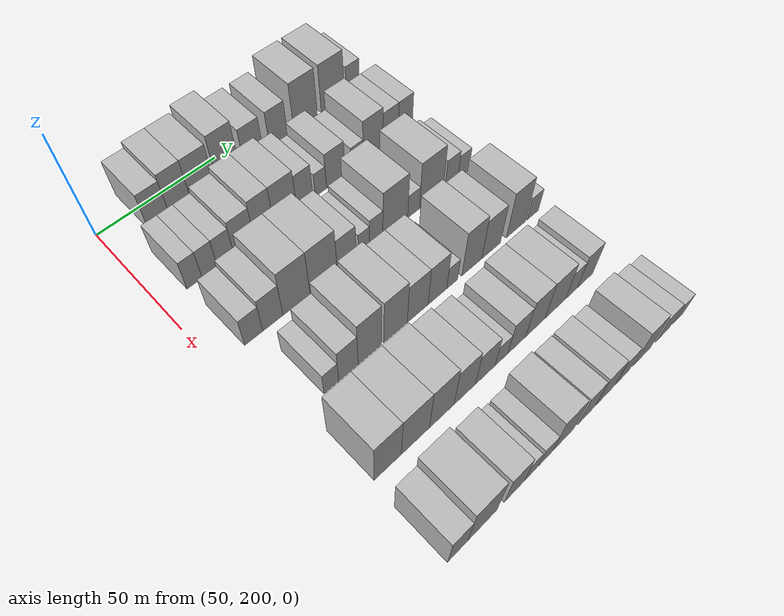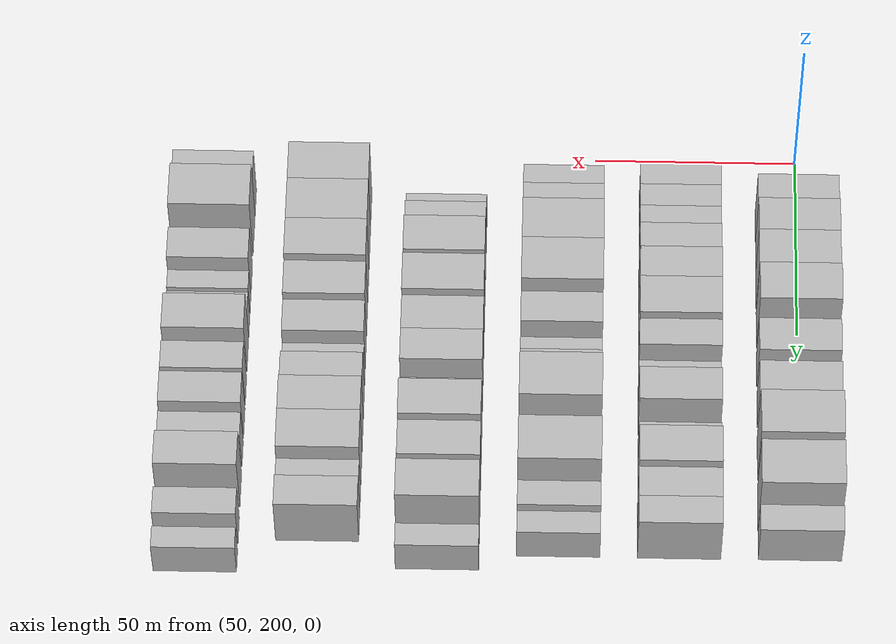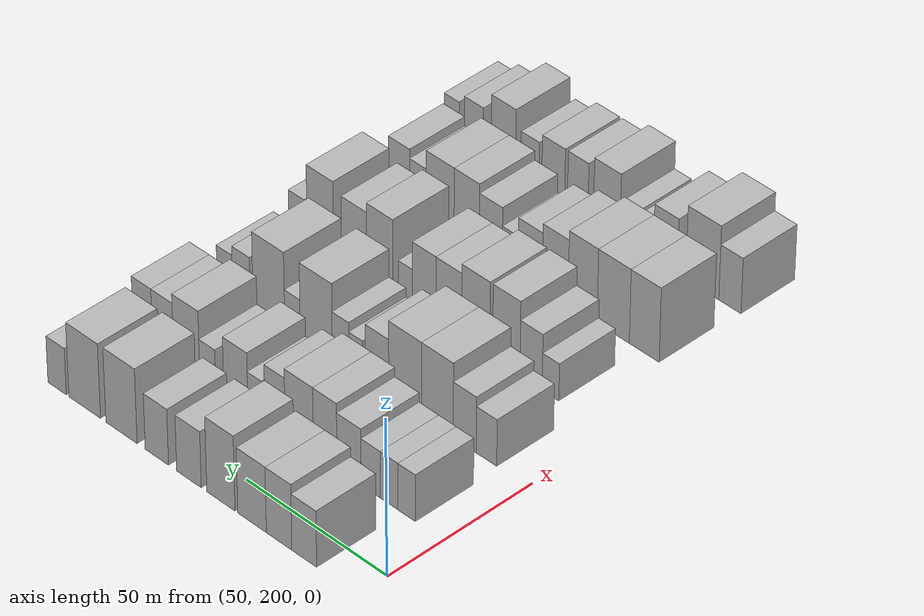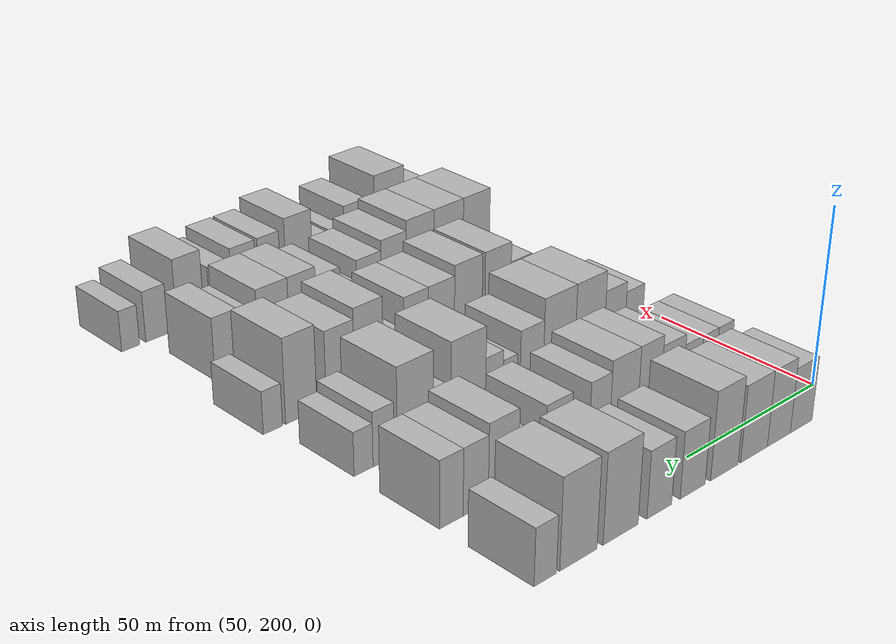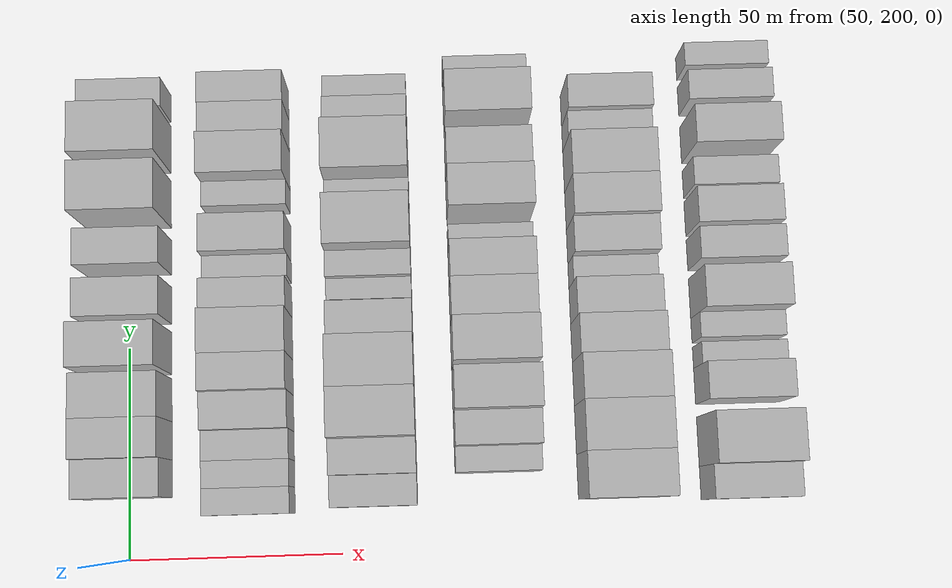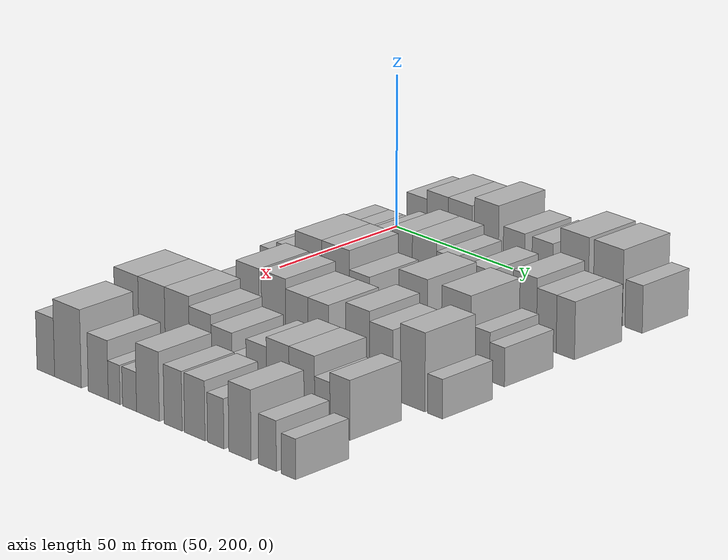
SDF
<sdf version="1.6">
 <world name="default">
  <model name="building_74">
   <static>1</static>
   <pose>50.0000 218.7383 0 0.000000 0.000000 0.000000</pose>
   <link name="link">
    <pose>0 0 9.00 0 0 0</pose>
    <collision name="collision"><geometry><box><size>20.0000 8.8177 18.0000</size></box></geometry></collision>
    <visual name="visual">
     <cast_shadows>0</cast_shadows>
     <geometry><box><size>20.0000 8.8177 18.0000</size></box></geometry>
     <material>
      <script>
       <uri>model://HANNAS_wall/materials/scripts</uri>
       <uri>model://HANNAS_wall/materials/textures</uri>
       <name>vrc/HANNAS_wall</name>
      </script>
     </material>
    </visual>
   </link>
  </model>
  <model name="building_75">
   <static>1</static>
   <pose>50.0000 227.6989 0 0.000000 0.000000 0.000000</pose>
   <link name="link">
    <pose>0 0 10.50 0 0 0</pose>
    <collision name="collision"><geometry><box><size>20.0000 9.1034 21.0000</size></box></geometry></collision>
    <visual name="visual">
     <cast_shadows>0</cast_shadows>
     <geometry><box><size>20.0000 9.1034 21.0000</size></box></geometry>
     <material>
      <script>
       <uri>model://HANNAS_wall/materials/scripts</uri>
       <uri>model://HANNAS_wall/materials/textures</uri>
       <name>vrc/HANNAS_wall</name>
      </script>
     </material>
    </visual>
   </link>
  </model>
  <model name="building_76">
   <static>1</static>
   <pose>50.0000 237.3875 0 0.000000 0.000000 0.000000</pose>
   <link name="link">
    <pose>0 0 10.50 0 0 0</pose>
    <collision name="collision"><geometry><box><size>20.0000 10.2737 21.0000</size></box></geometry></collision>
    <visual name="visual">
     <cast_shadows>0</cast_shadows>
     <geometry><box><size>20.0000 10.2737 21.0000</size></box></geometry>
     <material>
      <script>
       <uri>model://HANNAS_wall/materials/scripts</uri>
       <uri>model://HANNAS_wall/materials/textures</uri>
       <name>vrc/HANNAS_wall</name>
      </script>
     </material>
    </visual>
   </link>
  </model>
  <model name="building_77">
   <static>1</static>
   <pose>50.0000 248.6343 0 0.000000 0.000000 0.000000</pose>
   <link name="link">
    <pose>0 0 12.00 0 0 0</pose>
    <collision name="collision"><geometry><box><size>20.0000 10.2200 24.0000</size></box></geometry></collision>
    <visual name="visual">
     <cast_shadows>0</cast_shadows>
     <geometry><box><size>20.0000 10.2200 24.0000</size></box></geometry>
     <material>
      <script>
       <uri>model://HANNAS_wall/materials/scripts</uri>
       <uri>model://HANNAS_wall/materials/textures</uri>
       <name>vrc/HANNAS_wall</name>
      </script>
     </material>
    </visual>
   </link>
  </model>
  <model name="building_78">
   <static>1</static>
   <pose>50.0000 260.2381 0 0.000000 0.000000 0.000000</pose>
   <link name="link">
    <pose>0 0 9.00 0 0 0</pose>
    <collision name="collision"><geometry><box><size>20.0000 8.9874 18.0000</size></box></geometry></collision>
    <visual name="visual">
     <cast_shadows>0</cast_shadows>
     <geometry><box><size>20.0000 8.9874 18.0000</size></box></geometry>
     <material>
      <script>
       <uri>model://HANNAS_wall/materials/scripts</uri>
       <uri>model://HANNAS_wall/materials/textures</uri>
       <name>vrc/HANNAS_wall</name>
      </script>
     </material>
    </visual>
   </link>
  </model>
  <model name="building_79">
   <static>1</static>
   <pose>50.0000 272.0247 0 0.000000 0.000000 0.000000</pose>
   <link name="link">
    <pose>0 0 9.00 0 0 0</pose>
    <collision name="collision"><geometry><box><size>20.0000 8.5858 18.0000</size></box></geometry></collision>
    <visual name="visual">
     <cast_shadows>0</cast_shadows>
     <geometry><box><size>20.0000 8.5858 18.0000</size></box></geometry>
     <material>
      <script>
       <uri>model://HANNAS_wall/materials/scripts</uri>
       <uri>model://HANNAS_wall/materials/textures</uri>
       <name>vrc/HANNAS_wall</name>
      </script>
     </material>
    </visual>
   </link>
  </model>
  <model name="building_80">
   <static>1</static>
   <pose>50.0000 285.1356 0 0.000000 0.000000 0.000000</pose>
   <link name="link">
    <pose>0 0 12.00 0 0 0</pose>
    <collision name="collision"><geometry><box><size>20.0000 11.6360 24.0000</size></box></geometry></collision>
    <visual name="visual">
     <cast_shadows>0</cast_shadows>
     <geometry><box><size>20.0000 11.6360 24.0000</size></box></geometry>
     <material>
      <script>
       <uri>model://HANNAS_wall/materials/scripts</uri>
       <uri>model://HANNAS_wall/materials/textures</uri>
       <name>vrc/HANNAS_wall</name>
      </script>
     </material>
    </visual>
   </link>
  </model>
  <model name="building_81">
   <static>1</static>
   <pose>50.0000 298.8813 0 0.000000 0.000000 0.000000</pose>
   <link name="link">
    <pose>0 0 12.00 0 0 0</pose>
    <collision name="collision"><geometry><box><size>20.0000 11.8554 24.0000</size></box></geometry></collision>
    <visual name="visual">
     <cast_shadows>0</cast_shadows>
     <geometry><box><size>20.0000 11.8554 24.0000</size></box></geometry>
     <material>
      <script>
       <uri>model://HANNAS_wall/materials/scripts</uri>
       <uri>model://HANNAS_wall/materials/textures</uri>
       <name>vrc/HANNAS_wall</name>
      </script>
     </material>
    </visual>
   </link>
  </model>
  <model name="building_82">
   <static>1</static>
   <pose>50.0000 309.2679 0 0.000000 0.000000 0.000000</pose>
   <link name="link">
    <pose>0 0 7.50 0 0 0</pose>
    <collision name="collision"><geometry><box><size>20.0000 6.9177 15.0000</size></box></geometry></collision>
    <visual name="visual">
     <cast_shadows>0</cast_shadows>
     <geometry><box><size>20.0000 6.9177 15.0000</size></box></geometry>
     <material>
      <script>
       <uri>model://HANNAS_wall/materials/scripts</uri>
       <uri>model://HANNAS_wall/materials/textures</uri>
       <name>vrc/HANNAS_wall</name>
      </script>
     </material>
    </visual>
   </link>
  </model>
  <model name="building_189">
   <static>1</static>
   <pose>79.0000 212.8298 0 0.000000 0.000000 0.000000</pose>
   <link name="link">
    <pose>0 0 7.50 0 0 0</pose>
    <collision name="collision"><geometry><box><size>20.0000 6.0908 15.0000</size></box></geometry></collision>
    <visual name="visual">
     <cast_shadows>0</cast_shadows>
     <geometry><box><size>20.0000 6.0908 15.0000</size></box></geometry>
     <material>
      <script>
       <uri>model://HANNAS_wall/materials/scripts</uri>
       <uri>model://HANNAS_wall/materials/textures</uri>
       <name>vrc/HANNAS_wall</name>
      </script>
     </material>
    </visual>
   </link>
  </model>
  <model name="building_190">
   <static>1</static>
   <pose>79.0000 218.9930 0 0.000000 0.000000 0.000000</pose>
   <link name="link">
    <pose>0 0 7.50 0 0 0</pose>
    <collision name="collision"><geometry><box><size>20.0000 6.2356 15.0000</size></box></geometry></collision>
    <visual name="visual">
     <cast_shadows>0</cast_shadows>
     <geometry><box><size>20.0000 6.2356 15.0000</size></box></geometry>
     <material>
      <script>
       <uri>model://HANNAS_wall/materials/scripts</uri>
       <uri>model://HANNAS_wall/materials/textures</uri>
       <name>vrc/HANNAS_wall</name>
      </script>
     </material>
    </visual>
   </link>
  </model>
  <model name="building_191">
   <static>1</static>
   <pose>79.0000 225.5466 0 0.000000 0.000000 0.000000</pose>
   <link name="link">
    <pose>0 0 7.50 0 0 0</pose>
    <collision name="collision"><geometry><box><size>20.0000 6.8717 15.0000</size></box></geometry></collision>
    <visual name="visual">
     <cast_shadows>0</cast_shadows>
     <geometry><box><size>20.0000 6.8717 15.0000</size></box></geometry>
     <material>
      <script>
       <uri>model://HANNAS_wall/materials/scripts</uri>
       <uri>model://HANNAS_wall/materials/textures</uri>
       <name>vrc/HANNAS_wall</name>
      </script>
     </material>
    </visual>
   </link>
  </model>
  <model name="building_192">
   <static>1</static>
   <pose>79.0000 233.3100 0 0.000000 0.000000 0.000000</pose>
   <link name="link">
    <pose>0 0 9.00 0 0 0</pose>
    <collision name="collision"><geometry><box><size>20.0000 8.6549 18.0000</size></box></geometry></collision>
    <visual name="visual">
     <cast_shadows>0</cast_shadows>
     <geometry><box><size>20.0000 8.6549 18.0000</size></box></geometry>
     <material>
      <script>
       <uri>model://HANNAS_wall/materials/scripts</uri>
       <uri>model://HANNAS_wall/materials/textures</uri>
       <name>vrc/HANNAS_wall</name>
      </script>
     </material>
    </visual>
   </link>
  </model>
  <model name="building_193">
   <static>1</static>
   <pose>79.0000 241.8893 0 0.000000 0.000000 0.000000</pose>
   <link name="link">
    <pose>0 0 10.50 0 0 0</pose>
    <collision name="collision"><geometry><box><size>20.0000 8.5037 21.0000</size></box></geometry></collision>
    <visual name="visual">
     <cast_shadows>0</cast_shadows>
     <geometry><box><size>20.0000 8.5037 21.0000</size></box></geometry>
     <material>
      <script>
       <uri>model://HANNAS_wall/materials/scripts</uri>
       <uri>model://HANNAS_wall/materials/textures</uri>
       <name>vrc/HANNAS_wall</name>
      </script>
     </material>
    </visual>
   </link>
  </model>
  <model name="building_194">
   <static>1</static>
   <pose>79.0000 251.2716 0 0.000000 0.000000 0.000000</pose>
   <link name="link">
    <pose>0 0 10.50 0 0 0</pose>
    <collision name="collision"><geometry><box><size>20.0000 10.2610 21.0000</size></box></geometry></collision>
    <visual name="visual">
     <cast_shadows>0</cast_shadows>
     <geometry><box><size>20.0000 10.2610 21.0000</size></box></geometry>
     <material>
      <script>
       <uri>model://HANNAS_wall/materials/scripts</uri>
       <uri>model://HANNAS_wall/materials/textures</uri>
       <name>vrc/HANNAS_wall</name>
      </script>
     </material>
    </visual>
   </link>
  </model>
  <model name="building_195">
   <static>1</static>
   <pose>79.0000 260.0804 0 0.000000 0.000000 0.000000</pose>
   <link name="link">
    <pose>0 0 9.00 0 0 0</pose>
    <collision name="collision"><geometry><box><size>20.0000 7.3567 18.0000</size></box></geometry></collision>
    <visual name="visual">
     <cast_shadows>0</cast_shadows>
     <geometry><box><size>20.0000 7.3567 18.0000</size></box></geometry>
     <material>
      <script>
       <uri>model://HANNAS_wall/materials/scripts</uri>
       <uri>model://HANNAS_wall/materials/textures</uri>
       <name>vrc/HANNAS_wall</name>
      </script>
     </material>
    </visual>
   </link>
  </model>
  <model name="building_196">
   <static>1</static>
   <pose>79.0000 267.3983 0 0.000000 0.000000 0.000000</pose>
   <link name="link">
    <pose>0 0 6.00 0 0 0</pose>
    <collision name="collision"><geometry><box><size>20.0000 5.2791 12.0000</size></box></geometry></collision>
    <visual name="visual">
     <cast_shadows>0</cast_shadows>
     <geometry><box><size>20.0000 5.2791 12.0000</size></box></geometry>
     <material>
      <script>
       <uri>model://HANNAS_wall/materials/scripts</uri>
       <uri>model://HANNAS_wall/materials/textures</uri>
       <name>vrc/HANNAS_wall</name>
      </script>
     </material>
    </visual>
   </link>
  </model>
  <model name="building_197">
   <static>1</static>
   <pose>79.0000 274.4794 0 0.000000 0.000000 0.000000</pose>
   <link name="link">
    <pose>0 0 9.00 0 0 0</pose>
    <collision name="collision"><geometry><box><size>20.0000 8.8831 18.0000</size></box></geometry></collision>
    <visual name="visual">
     <cast_shadows>0</cast_shadows>
     <geometry><box><size>20.0000 8.8831 18.0000</size></box></geometry>
     <material>
      <script>
       <uri>model://HANNAS_wall/materials/scripts</uri>
       <uri>model://HANNAS_wall/materials/textures</uri>
       <name>vrc/HANNAS_wall</name>
      </script>
     </material>
    </visual>
   </link>
  </model>
  <model name="building_198">
   <static>1</static>
   <pose>79.0000 284.8991 0 0.000000 0.000000 0.000000</pose>
   <link name="link">
    <pose>0 0 6.00 0 0 0</pose>
    <collision name="collision"><geometry><box><size>20.0000 5.9561 12.0000</size></box></geometry></collision>
    <visual name="visual">
     <cast_shadows>0</cast_shadows>
     <geometry><box><size>20.0000 5.9561 12.0000</size></box></geometry>
     <material>
      <script>
       <uri>model://HANNAS_wall/materials/scripts</uri>
       <uri>model://HANNAS_wall/materials/textures</uri>
       <name>vrc/HANNAS_wall</name>
      </script>
     </material>
    </visual>
   </link>
  </model>
  <model name="building_199">
   <static>1</static>
   <pose>79.0000 292.7329 0 0.000000 0.000000 0.000000</pose>
   <link name="link">
    <pose>0 0 10.50 0 0 0</pose>
    <collision name="collision"><geometry><box><size>20.0000 9.7114 21.0000</size></box></geometry></collision>
    <visual name="visual">
     <cast_shadows>0</cast_shadows>
     <geometry><box><size>20.0000 9.7114 21.0000</size></box></geometry>
     <material>
      <script>
       <uri>model://HANNAS_wall/materials/scripts</uri>
       <uri>model://HANNAS_wall/materials/textures</uri>
       <name>vrc/HANNAS_wall</name>
      </script>
     </material>
    </visual>
   </link>
  </model>
  <model name="building_200">
   <static>1</static>
   <pose>79.0000 301.5534 0 0.000000 0.000000 0.000000</pose>
   <link name="link">
    <pose>0 0 9.00 0 0 0</pose>
    <collision name="collision"><geometry><box><size>20.0000 7.9296 18.0000</size></box></geometry></collision>
    <visual name="visual">
     <cast_shadows>0</cast_shadows>
     <geometry><box><size>20.0000 7.9296 18.0000</size></box></geometry>
     <material>
      <script>
       <uri>model://HANNAS_wall/materials/scripts</uri>
       <uri>model://HANNAS_wall/materials/textures</uri>
       <name>vrc/HANNAS_wall</name>
      </script>
     </material>
    </visual>
   </link>
  </model>
  <model name="building_201">
   <static>1</static>
   <pose>79.0000 309.1722 0 0.000000 0.000000 0.000000</pose>
   <link name="link">
    <pose>0 0 9.00 0 0 0</pose>
    <collision name="collision"><geometry><box><size>20.0000 7.3081 18.0000</size></box></geometry></collision>
    <visual name="visual">
     <cast_shadows>0</cast_shadows>
     <geometry><box><size>20.0000 7.3081 18.0000</size></box></geometry>
     <material>
      <script>
       <uri>model://HANNAS_wall/materials/scripts</uri>
       <uri>model://HANNAS_wall/materials/textures</uri>
       <name>vrc/HANNAS_wall</name>
      </script>
     </material>
    </visual>
   </link>
  </model>
  <model name="building_308">
   <static>1</static>
   <pose>108.0000 214.3331 0 0.000000 0.000000 0.000000</pose>
   <link name="link">
    <pose>0 0 7.50 0 0 0</pose>
    <collision name="collision"><geometry><box><size>20.0000 7.2004 15.0000</size></box></geometry></collision>
    <visual name="visual">
     <cast_shadows>0</cast_shadows>
     <geometry><box><size>20.0000 7.2004 15.0000</size></box></geometry>
     <material>
      <script>
       <uri>model://HANNAS_wall/materials/scripts</uri>
       <uri>model://HANNAS_wall/materials/textures</uri>
       <name>vrc/HANNAS_wall</name>
      </script>
     </material>
    </visual>
   </link>
  </model>
  <model name="building_309">
   <static>1</static>
   <pose>108.0000 222.0248 0 0.000000 0.000000 0.000000</pose>
   <link name="link">
    <pose>0 0 9.00 0 0 0</pose>
    <collision name="collision"><geometry><box><size>20.0000 8.1831 18.0000</size></box></geometry></collision>
    <visual name="visual">
     <cast_shadows>0</cast_shadows>
     <geometry><box><size>20.0000 8.1831 18.0000</size></box></geometry>
     <material>
      <script>
       <uri>model://HANNAS_wall/materials/scripts</uri>
       <uri>model://HANNAS_wall/materials/textures</uri>
       <name>vrc/HANNAS_wall</name>
      </script>
     </material>
    </visual>
   </link>
  </model>
  <model name="building_310">
   <static>1</static>
   <pose>108.0000 231.7668 0 0.000000 0.000000 0.000000</pose>
   <link name="link">
    <pose>0 0 12.00 0 0 0</pose>
    <collision name="collision"><geometry><box><size>20.0000 11.3008 24.0000</size></box></geometry></collision>
    <visual name="visual">
     <cast_shadows>0</cast_shadows>
     <geometry><box><size>20.0000 11.3008 24.0000</size></box></geometry>
     <material>
      <script>
       <uri>model://HANNAS_wall/materials/scripts</uri>
       <uri>model://HANNAS_wall/materials/textures</uri>
       <name>vrc/HANNAS_wall</name>
      </script>
     </material>
    </visual>
   </link>
  </model>
  <model name="building_311">
   <static>1</static>
   <pose>108.0000 243.3250 0 0.000000 0.000000 0.000000</pose>
   <link name="link">
    <pose>0 0 12.00 0 0 0</pose>
    <collision name="collision"><geometry><box><size>20.0000 11.8156 24.0000</size></box></geometry></collision>
    <visual name="visual">
     <cast_shadows>0</cast_shadows>
     <geometry><box><size>20.0000 11.8156 24.0000</size></box></geometry>
     <material>
      <script>
       <uri>model://HANNAS_wall/materials/scripts</uri>
       <uri>model://HANNAS_wall/materials/textures</uri>
       <name>vrc/HANNAS_wall</name>
      </script>
     </material>
    </visual>
   </link>
  </model>
  <model name="building_312">
   <static>1</static>
   <pose>108.0000 253.4619 0 0.000000 0.000000 0.000000</pose>
   <link name="link">
    <pose>0 0 9.00 0 0 0</pose>
    <collision name="collision"><geometry><box><size>20.0000 8.4582 18.0000</size></box></geometry></collision>
    <visual name="visual">
     <cast_shadows>0</cast_shadows>
     <geometry><box><size>20.0000 8.4582 18.0000</size></box></geometry>
     <material>
      <script>
       <uri>model://HANNAS_wall/materials/scripts</uri>
       <uri>model://HANNAS_wall/materials/textures</uri>
       <name>vrc/HANNAS_wall</name>
      </script>
     </material>
    </visual>
   </link>
  </model>
  <model name="building_313">
   <static>1</static>
   <pose>108.0000 261.2196 0 0.000000 0.000000 0.000000</pose>
   <link name="link">
    <pose>0 0 6.00 0 0 0</pose>
    <collision name="collision"><geometry><box><size>20.0000 5.0573 12.0000</size></box></geometry></collision>
    <visual name="visual">
     <cast_shadows>0</cast_shadows>
     <geometry><box><size>20.0000 5.0573 12.0000</size></box></geometry>
     <material>
      <script>
       <uri>model://HANNAS_wall/materials/scripts</uri>
       <uri>model://HANNAS_wall/materials/textures</uri>
       <name>vrc/HANNAS_wall</name>
      </script>
     </material>
    </visual>
   </link>
  </model>
  <model name="building_314">
   <static>1</static>
   <pose>108.0000 266.7947 0 0.000000 0.000000 0.000000</pose>
   <link name="link">
    <pose>0 0 7.50 0 0 0</pose>
    <collision name="collision"><geometry><box><size>20.0000 6.0928 15.0000</size></box></geometry></collision>
    <visual name="visual">
     <cast_shadows>0</cast_shadows>
     <geometry><box><size>20.0000 6.0928 15.0000</size></box></geometry>
     <material>
      <script>
       <uri>model://HANNAS_wall/materials/scripts</uri>
       <uri>model://HANNAS_wall/materials/textures</uri>
       <name>vrc/HANNAS_wall</name>
      </script>
     </material>
    </visual>
   </link>
  </model>
  <model name="building_315">
   <static>1</static>
   <pose>108.0000 275.7567 0 0.000000 0.000000 0.000000</pose>
   <link name="link">
    <pose>0 0 12.00 0 0 0</pose>
    <collision name="collision"><geometry><box><size>20.0000 11.8312 24.0000</size></box></geometry></collision>
    <visual name="visual">
     <cast_shadows>0</cast_shadows>
     <geometry><box><size>20.0000 11.8312 24.0000</size></box></geometry>
     <material>
      <script>
       <uri>model://HANNAS_wall/materials/scripts</uri>
       <uri>model://HANNAS_wall/materials/textures</uri>
       <name>vrc/HANNAS_wall</name>
      </script>
     </material>
    </visual>
   </link>
  </model>
  <model name="building_316">
   <static>1</static>
   <pose>108.0000 284.5407 0 0.000000 0.000000 0.000000</pose>
   <link name="link">
    <pose>0 0 6.00 0 0 0</pose>
    <collision name="collision"><geometry><box><size>20.0000 5.7368 12.0000</size></box></geometry></collision>
    <visual name="visual">
     <cast_shadows>0</cast_shadows>
     <geometry><box><size>20.0000 5.7368 12.0000</size></box></geometry>
     <material>
      <script>
       <uri>model://HANNAS_wall/materials/scripts</uri>
       <uri>model://HANNAS_wall/materials/textures</uri>
       <name>vrc/HANNAS_wall</name>
      </script>
     </material>
    </visual>
   </link>
  </model>
  <model name="building_317">
   <static>1</static>
   <pose>108.0000 293.3308 0 0.000000 0.000000 0.000000</pose>
   <link name="link">
    <pose>0 0 12.00 0 0 0</pose>
    <collision name="collision"><geometry><box><size>20.0000 11.8435 24.0000</size></box></geometry></collision>
    <visual name="visual">
     <cast_shadows>0</cast_shadows>
     <geometry><box><size>20.0000 11.8435 24.0000</size></box></geometry>
     <material>
      <script>
       <uri>model://HANNAS_wall/materials/scripts</uri>
       <uri>model://HANNAS_wall/materials/textures</uri>
       <name>vrc/HANNAS_wall</name>
      </script>
     </material>
    </visual>
   </link>
  </model>
  <model name="building_318">
   <static>1</static>
   <pose>108.0000 303.5822 0 0.000000 0.000000 0.000000</pose>
   <link name="link">
    <pose>0 0 7.50 0 0 0</pose>
    <collision name="collision"><geometry><box><size>20.0000 6.6592 15.0000</size></box></geometry></collision>
    <visual name="visual">
     <cast_shadows>0</cast_shadows>
     <geometry><box><size>20.0000 6.6592 15.0000</size></box></geometry>
     <material>
      <script>
       <uri>model://HANNAS_wall/materials/scripts</uri>
       <uri>model://HANNAS_wall/materials/textures</uri>
       <name>vrc/HANNAS_wall</name>
      </script>
     </material>
    </visual>
   </link>
  </model>
  <model name="building_319">
   <static>1</static>
   <pose>108.0000 309.8564 0 0.000000 0.000000 0.000000</pose>
   <link name="link">
    <pose>0 0 6.00 0 0 0</pose>
    <collision name="collision"><geometry><box><size>20.0000 5.8893 12.0000</size></box></geometry></collision>
    <visual name="visual">
     <cast_shadows>0</cast_shadows>
     <geometry><box><size>20.0000 5.8893 12.0000</size></box></geometry>
     <material>
      <script>
       <uri>model://HANNAS_wall/materials/scripts</uri>
       <uri>model://HANNAS_wall/materials/textures</uri>
       <name>vrc/HANNAS_wall</name>
      </script>
     </material>
    </visual>
   </link>
  </model>
  <model name="building_428">
   <static>1</static>
   <pose>137.0000 220.8318 0 0.000000 0.000000 0.000000</pose>
   <link name="link">
    <pose>0 0 6.00 0 0 0</pose>
    <collision name="collision"><geometry><box><size>20.0000 5.9011 12.0000</size></box></geometry></collision>
    <visual name="visual">
     <cast_shadows>0</cast_shadows>
     <geometry><box><size>20.0000 5.9011 12.0000</size></box></geometry>
     <material>
      <script>
       <uri>model://HANNAS_wall/materials/scripts</uri>
       <uri>model://HANNAS_wall/materials/textures</uri>
       <name>vrc/HANNAS_wall</name>
      </script>
     </material>
    </visual>
   </link>
  </model>
  <model name="building_429">
   <static>1</static>
   <pose>137.0000 227.7468 0 0.000000 0.000000 0.000000</pose>
   <link name="link">
    <pose>0 0 9.00 0 0 0</pose>
    <collision name="collision"><geometry><box><size>20.0000 7.9290 18.0000</size></box></geometry></collision>
    <visual name="visual">
     <cast_shadows>0</cast_shadows>
     <geometry><box><size>20.0000 7.9290 18.0000</size></box></geometry>
     <material>
      <script>
       <uri>model://HANNAS_wall/materials/scripts</uri>
       <uri>model://HANNAS_wall/materials/textures</uri>
       <name>vrc/HANNAS_wall</name>
      </script>
     </material>
    </visual>
   </link>
  </model>
  <model name="building_430">
   <static>1</static>
   <pose>137.0000 236.6055 0 0.000000 0.000000 0.000000</pose>
   <link name="link">
    <pose>0 0 12.00 0 0 0</pose>
    <collision name="collision"><geometry><box><size>20.0000 9.7884 24.0000</size></box></geometry></collision>
    <visual name="visual">
     <cast_shadows>0</cast_shadows>
     <geometry><box><size>20.0000 9.7884 24.0000</size></box></geometry>
     <material>
      <script>
       <uri>model://HANNAS_wall/materials/scripts</uri>
       <uri>model://HANNAS_wall/materials/textures</uri>
       <name>vrc/HANNAS_wall</name>
      </script>
     </material>
    </visual>
   </link>
  </model>
  <model name="building_431">
   <static>1</static>
   <pose>137.0000 247.6091 0 0.000000 0.000000 0.000000</pose>
   <link name="link">
    <pose>0 0 12.00 0 0 0</pose>
    <collision name="collision"><geometry><box><size>20.0000 10.2189 24.0000</size></box></geometry></collision>
    <visual name="visual">
     <cast_shadows>0</cast_shadows>
     <geometry><box><size>20.0000 10.2189 24.0000</size></box></geometry>
     <material>
      <script>
       <uri>model://HANNAS_wall/materials/scripts</uri>
       <uri>model://HANNAS_wall/materials/textures</uri>
       <name>vrc/HANNAS_wall</name>
      </script>
     </material>
    </visual>
   </link>
  </model>
  <model name="building_432">
   <static>1</static>
   <pose>137.0000 257.3865 0 0.000000 0.000000 0.000000</pose>
   <link name="link">
    <pose>0 0 10.50 0 0 0</pose>
    <collision name="collision"><geometry><box><size>20.0000 9.3358 21.0000</size></box></geometry></collision>
    <visual name="visual">
     <cast_shadows>0</cast_shadows>
     <geometry><box><size>20.0000 9.3358 21.0000</size></box></geometry>
     <material>
      <script>
       <uri>model://HANNAS_wall/materials/scripts</uri>
       <uri>model://HANNAS_wall/materials/textures</uri>
       <name>vrc/HANNAS_wall</name>
      </script>
     </material>
    </visual>
   </link>
  </model>
  <model name="building_433">
   <static>1</static>
   <pose>137.0000 266.3541 0 0.000000 0.000000 0.000000</pose>
   <link name="link">
    <pose>0 0 10.50 0 0 0</pose>
    <collision name="collision"><geometry><box><size>20.0000 8.5994 21.0000</size></box></geometry></collision>
    <visual name="visual">
     <cast_shadows>0</cast_shadows>
     <geometry><box><size>20.0000 8.5994 21.0000</size></box></geometry>
     <material>
      <script>
       <uri>model://HANNAS_wall/materials/scripts</uri>
       <uri>model://HANNAS_wall/materials/textures</uri>
       <name>vrc/HANNAS_wall</name>
      </script>
     </material>
    </visual>
   </link>
  </model>
  <model name="building_434">
   <static>1</static>
   <pose>137.0000 273.2476 0 0.000000 0.000000 0.000000</pose>
   <link name="link">
    <pose>0 0 6.00 0 0 0</pose>
    <collision name="collision"><geometry><box><size>20.0000 5.1876 12.0000</size></box></geometry></collision>
    <visual name="visual">
     <cast_shadows>0</cast_shadows>
     <geometry><box><size>20.0000 5.1876 12.0000</size></box></geometry>
     <material>
      <script>
       <uri>model://HANNAS_wall/materials/scripts</uri>
       <uri>model://HANNAS_wall/materials/textures</uri>
       <name>vrc/HANNAS_wall</name>
      </script>
     </material>
    </visual>
   </link>
  </model>
  <model name="building_435">
   <static>1</static>
   <pose>137.0000 282.6857 0 0.000000 0.000000 0.000000</pose>
   <link name="link">
    <pose>0 0 12.00 0 0 0</pose>
    <collision name="collision"><geometry><box><size>20.0000 9.6886 24.0000</size></box></geometry></collision>
    <visual name="visual">
     <cast_shadows>0</cast_shadows>
     <geometry><box><size>20.0000 9.6886 24.0000</size></box></geometry>
     <material>
      <script>
       <uri>model://HANNAS_wall/materials/scripts</uri>
       <uri>model://HANNAS_wall/materials/textures</uri>
       <name>vrc/HANNAS_wall</name>
      </script>
     </material>
    </visual>
   </link>
  </model>
  <model name="building_436">
   <static>1</static>
   <pose>137.0000 292.2191 0 0.000000 0.000000 0.000000</pose>
   <link name="link">
    <pose>0 0 10.50 0 0 0</pose>
    <collision name="collision"><geometry><box><size>20.0000 9.3782 21.0000</size></box></geometry></collision>
    <visual name="visual">
     <cast_shadows>0</cast_shadows>
     <geometry><box><size>20.0000 9.3782 21.0000</size></box></geometry>
     <material>
      <script>
       <uri>model://HANNAS_wall/materials/scripts</uri>
       <uri>model://HANNAS_wall/materials/textures</uri>
       <name>vrc/HANNAS_wall</name>
      </script>
     </material>
    </visual>
   </link>
  </model>
  <model name="building_437">
   <static>1</static>
   <pose>137.0000 304.8834 0 0.000000 0.000000 0.000000</pose>
   <link name="link">
    <pose>0 0 12.00 0 0 0</pose>
    <collision name="collision"><geometry><box><size>20.0000 9.9503 24.0000</size></box></geometry></collision>
    <visual name="visual">
     <cast_shadows>0</cast_shadows>
     <geometry><box><size>20.0000 9.9503 24.0000</size></box></geometry>
     <material>
      <script>
       <uri>model://HANNAS_wall/materials/scripts</uri>
       <uri>model://HANNAS_wall/materials/textures</uri>
       <name>vrc/HANNAS_wall</name>
      </script>
     </material>
    </visual>
   </link>
  </model>
  <model name="building_438">
   <static>1</static>
   <pose>137.0000 313.8279 0 0.000000 0.000000 0.000000</pose>
   <link name="link">
    <pose>0 0 6.00 0 0 0</pose>
    <collision name="collision"><geometry><box><size>20.0000 5.9387 12.0000</size></box></geometry></collision>
    <visual name="visual">
     <cast_shadows>0</cast_shadows>
     <geometry><box><size>20.0000 5.9387 12.0000</size></box></geometry>
     <material>
      <script>
       <uri>model://HANNAS_wall/materials/scripts</uri>
       <uri>model://HANNAS_wall/materials/textures</uri>
       <name>vrc/HANNAS_wall</name>
      </script>
     </material>
    </visual>
   </link>
  </model>
  <model name="building_542">
   <static>1</static>
   <pose>166.0000 216.2409 0 0.000000 0.000000 0.000000</pose>
   <link name="link">
    <pose>0 0 12.00 0 0 0</pose>
    <collision name="collision"><geometry><box><size>20.0000 10.5428 24.0000</size></box></geometry></collision>
    <visual name="visual">
     <cast_shadows>0</cast_shadows>
     <geometry><box><size>20.0000 10.5428 24.0000</size></box></geometry>
     <material>
      <script>
       <uri>model://HANNAS_wall/materials/scripts</uri>
       <uri>model://HANNAS_wall/materials/textures</uri>
       <name>vrc/HANNAS_wall</name>
      </script>
     </material>
    </visual>
   </link>
  </model>
  <model name="building_543">
   <static>1</static>
   <pose>166.0000 227.2452 0 0.000000 0.000000 0.000000</pose>
   <link name="link">
    <pose>0 0 12.00 0 0 0</pose>
    <collision name="collision"><geometry><box><size>20.0000 11.4658 24.0000</size></box></geometry></collision>
    <visual name="visual">
     <cast_shadows>0</cast_shadows>
     <geometry><box><size>20.0000 11.4658 24.0000</size></box></geometry>
     <material>
      <script>
       <uri>model://HANNAS_wall/materials/scripts</uri>
       <uri>model://HANNAS_wall/materials/textures</uri>
       <name>vrc/HANNAS_wall</name>
      </script>
     </material>
    </visual>
   </link>
  </model>
  <model name="building_544">
   <static>1</static>
   <pose>166.0000 238.1697 0 0.000000 0.000000 0.000000</pose>
   <link name="link">
    <pose>0 0 12.00 0 0 0</pose>
    <collision name="collision"><geometry><box><size>20.0000 10.3833 24.0000</size></box></geometry></collision>
    <visual name="visual">
     <cast_shadows>0</cast_shadows>
     <geometry><box><size>20.0000 10.3833 24.0000</size></box></geometry>
     <material>
      <script>
       <uri>model://HANNAS_wall/materials/scripts</uri>
       <uri>model://HANNAS_wall/materials/textures</uri>
       <name>vrc/HANNAS_wall</name>
      </script>
     </material>
    </visual>
   </link>
  </model>
  <model name="building_545">
   <static>1</static>
   <pose>166.0000 248.0082 0 0.000000 0.000000 0.000000</pose>
   <link name="link">
    <pose>0 0 10.50 0 0 0</pose>
    <collision name="collision"><geometry><box><size>20.0000 9.2937 21.0000</size></box></geometry></collision>
    <visual name="visual">
     <cast_shadows>0</cast_shadows>
     <geometry><box><size>20.0000 9.2937 21.0000</size></box></geometry>
     <material>
      <script>
       <uri>model://HANNAS_wall/materials/scripts</uri>
       <uri>model://HANNAS_wall/materials/textures</uri>
       <name>vrc/HANNAS_wall</name>
      </script>
     </material>
    </visual>
   </link>
  </model>
  <model name="building_546">
   <static>1</static>
   <pose>166.0000 257.0573 0 0.000000 0.000000 0.000000</pose>
   <link name="link">
    <pose>0 0 9.00 0 0 0</pose>
    <collision name="collision"><geometry><box><size>20.0000 8.8045 18.0000</size></box></geometry></collision>
    <visual name="visual">
     <cast_shadows>0</cast_shadows>
     <geometry><box><size>20.0000 8.8045 18.0000</size></box></geometry>
     <material>
      <script>
       <uri>model://HANNAS_wall/materials/scripts</uri>
       <uri>model://HANNAS_wall/materials/textures</uri>
       <name>vrc/HANNAS_wall</name>
      </script>
     </material>
    </visual>
   </link>
  </model>
  <model name="building_547">
   <static>1</static>
   <pose>166.0000 264.3962 0 0.000000 0.000000 0.000000</pose>
   <link name="link">
    <pose>0 0 6.00 0 0 0</pose>
    <collision name="collision"><geometry><box><size>20.0000 5.8731 12.0000</size></box></geometry></collision>
    <visual name="visual">
     <cast_shadows>0</cast_shadows>
     <geometry><box><size>20.0000 5.8731 12.0000</size></box></geometry>
     <material>
      <script>
       <uri>model://HANNAS_wall/materials/scripts</uri>
       <uri>model://HANNAS_wall/materials/textures</uri>
       <name>vrc/HANNAS_wall</name>
      </script>
     </material>
    </visual>
   </link>
  </model>
  <model name="building_548">
   <static>1</static>
   <pose>166.0000 271.5359 0 0.000000 0.000000 0.000000</pose>
   <link name="link">
    <pose>0 0 9.00 0 0 0</pose>
    <collision name="collision"><geometry><box><size>20.0000 8.4062 18.0000</size></box></geometry></collision>
    <visual name="visual">
     <cast_shadows>0</cast_shadows>
     <geometry><box><size>20.0000 8.4062 18.0000</size></box></geometry>
     <material>
      <script>
       <uri>model://HANNAS_wall/materials/scripts</uri>
       <uri>model://HANNAS_wall/materials/textures</uri>
       <name>vrc/HANNAS_wall</name>
      </script>
     </material>
    </visual>
   </link>
  </model>
  <model name="building_549">
   <static>1</static>
   <pose>166.0000 280.4060 0 0.000000 0.000000 0.000000</pose>
   <link name="link">
    <pose>0 0 10.50 0 0 0</pose>
    <collision name="collision"><geometry><box><size>20.0000 9.3340 21.0000</size></box></geometry></collision>
    <visual name="visual">
     <cast_shadows>0</cast_shadows>
     <geometry><box><size>20.0000 9.3340 21.0000</size></box></geometry>
     <material>
      <script>
       <uri>model://HANNAS_wall/materials/scripts</uri>
       <uri>model://HANNAS_wall/materials/textures</uri>
       <name>vrc/HANNAS_wall</name>
      </script>
     </material>
    </visual>
   </link>
  </model>
  <model name="building_550">
   <static>1</static>
   <pose>166.0000 290.2439 0 0.000000 0.000000 0.000000</pose>
   <link name="link">
    <pose>0 0 10.50 0 0 0</pose>
    <collision name="collision"><geometry><box><size>20.0000 10.3418 21.0000</size></box></geometry></collision>
    <visual name="visual">
     <cast_shadows>0</cast_shadows>
     <geometry><box><size>20.0000 10.3418 21.0000</size></box></geometry>
     <material>
      <script>
       <uri>model://HANNAS_wall/materials/scripts</uri>
       <uri>model://HANNAS_wall/materials/textures</uri>
       <name>vrc/HANNAS_wall</name>
      </script>
     </material>
    </visual>
   </link>
  </model>
  <model name="building_551">
   <static>1</static>
   <pose>166.0000 298.5132 0 0.000000 0.000000 0.000000</pose>
   <link name="link">
    <pose>0 0 7.50 0 0 0</pose>
    <collision name="collision"><geometry><box><size>20.0000 6.1968 15.0000</size></box></geometry></collision>
    <visual name="visual">
     <cast_shadows>0</cast_shadows>
     <geometry><box><size>20.0000 6.1968 15.0000</size></box></geometry>
     <material>
      <script>
       <uri>model://HANNAS_wall/materials/scripts</uri>
       <uri>model://HANNAS_wall/materials/textures</uri>
       <name>vrc/HANNAS_wall</name>
      </script>
     </material>
    </visual>
   </link>
  </model>
  <model name="building_552">
   <static>1</static>
   <pose>166.0000 305.5962 0 0.000000 0.000000 0.000000</pose>
   <link name="link">
    <pose>0 0 9.00 0 0 0</pose>
    <collision name="collision"><geometry><box><size>20.0000 7.9691 18.0000</size></box></geometry></collision>
    <visual name="visual">
     <cast_shadows>0</cast_shadows>
     <geometry><box><size>20.0000 7.9691 18.0000</size></box></geometry>
     <material>
      <script>
       <uri>model://HANNAS_wall/materials/scripts</uri>
       <uri>model://HANNAS_wall/materials/textures</uri>
       <name>vrc/HANNAS_wall</name>
      </script>
     </material>
    </visual>
   </link>
  </model>
  <model name="building_648">
   <static>1</static>
   <pose>195.0000 213.9334 0 0.000000 0.000000 0.000000</pose>
   <link name="link">
    <pose>0 0 9.00 0 0 0</pose>
    <collision name="collision"><geometry><box><size>20.0000 7.8101 18.0000</size></box></geometry></collision>
    <visual name="visual">
     <cast_shadows>0</cast_shadows>
     <geometry><box><size>20.0000 7.8101 18.0000</size></box></geometry>
     <material>
      <script>
       <uri>model://HANNAS_wall/materials/scripts</uri>
       <uri>model://HANNAS_wall/materials/textures</uri>
       <name>vrc/HANNAS_wall</name>
      </script>
     </material>
    </visual>
   </link>
  </model>
  <model name="building_649">
   <static>1</static>
   <pose>195.0000 223.6889 0 0.000000 0.000000 0.000000</pose>
   <link name="link">
    <pose>0 0 12.00 0 0 0</pose>
    <collision name="collision"><geometry><box><size>20.0000 11.7008 24.0000</size></box></geometry></collision>
    <visual name="visual">
     <cast_shadows>0</cast_shadows>
     <geometry><box><size>20.0000 11.7008 24.0000</size></box></geometry>
     <material>
      <script>
       <uri>model://HANNAS_wall/materials/scripts</uri>
       <uri>model://HANNAS_wall/materials/textures</uri>
       <name>vrc/HANNAS_wall</name>
      </script>
     </material>
    </visual>
   </link>
  </model>
  <model name="building_650">
   <static>1</static>
   <pose>195.0000 236.8631 0 0.000000 0.000000 0.000000</pose>
   <link name="link">
    <pose>0 0 9.00 0 0 0</pose>
    <collision name="collision"><geometry><box><size>20.0000 8.6477 18.0000</size></box></geometry></collision>
    <visual name="visual">
     <cast_shadows>0</cast_shadows>
     <geometry><box><size>20.0000 8.6477 18.0000</size></box></geometry>
     <material>
      <script>
       <uri>model://HANNAS_wall/materials/scripts</uri>
       <uri>model://HANNAS_wall/materials/textures</uri>
       <name>vrc/HANNAS_wall</name>
      </script>
     </material>
    </visual>
   </link>
  </model>
  <model name="building_651">
   <static>1</static>
   <pose>195.0000 243.7322 0 0.000000 0.000000 0.000000</pose>
   <link name="link">
    <pose>0 0 6.00 0 0 0</pose>
    <collision name="collision"><geometry><box><size>20.0000 5.0903 12.0000</size></box></geometry></collision>
    <visual name="visual">
     <cast_shadows>0</cast_shadows>
     <geometry><box><size>20.0000 5.0903 12.0000</size></box></geometry>
     <material>
      <script>
       <uri>model://HANNAS_wall/materials/scripts</uri>
       <uri>model://HANNAS_wall/materials/textures</uri>
       <name>vrc/HANNAS_wall</name>
      </script>
     </material>
    </visual>
   </link>
  </model>
  <model name="building_652">
   <static>1</static>
   <pose>195.0000 250.2640 0 0.000000 0.000000 0.000000</pose>
   <link name="link">
    <pose>0 0 6.00 0 0 0</pose>
    <collision name="collision"><geometry><box><size>20.0000 5.9733 12.0000</size></box></geometry></collision>
    <visual name="visual">
     <cast_shadows>0</cast_shadows>
     <geometry><box><size>20.0000 5.9733 12.0000</size></box></geometry>
     <material>
      <script>
       <uri>model://HANNAS_wall/materials/scripts</uri>
       <uri>model://HANNAS_wall/materials/textures</uri>
       <name>vrc/HANNAS_wall</name>
      </script>
     </material>
    </visual>
   </link>
  </model>
  <model name="building_653">
   <static>1</static>
   <pose>195.0000 258.0799 0 0.000000 0.000000 0.000000</pose>
   <link name="link">
    <pose>0 0 10.50 0 0 0</pose>
    <collision name="collision"><geometry><box><size>20.0000 9.6584 21.0000</size></box></geometry></collision>
    <visual name="visual">
     <cast_shadows>0</cast_shadows>
     <geometry><box><size>20.0000 9.6584 21.0000</size></box></geometry>
     <material>
      <script>
       <uri>model://HANNAS_wall/materials/scripts</uri>
       <uri>model://HANNAS_wall/materials/textures</uri>
       <name>vrc/HANNAS_wall</name>
      </script>
     </material>
    </visual>
   </link>
  </model>
  <model name="building_654">
   <static>1</static>
   <pose>195.0000 268.6702 0 0.000000 0.000000 0.000000</pose>
   <link name="link">
    <pose>0 0 9.00 0 0 0</pose>
    <collision name="collision"><geometry><box><size>20.0000 7.5222 18.0000</size></box></geometry></collision>
    <visual name="visual">
     <cast_shadows>0</cast_shadows>
     <geometry><box><size>20.0000 7.5222 18.0000</size></box></geometry>
     <material>
      <script>
       <uri>model://HANNAS_wall/materials/scripts</uri>
       <uri>model://HANNAS_wall/materials/textures</uri>
       <name>vrc/HANNAS_wall</name>
      </script>
     </material>
    </visual>
   </link>
  </model>
  <model name="building_655">
   <static>1</static>
   <pose>195.0000 277.6688 0 0.000000 0.000000 0.000000</pose>
   <link name="link">
    <pose>0 0 9.00 0 0 0</pose>
    <collision name="collision"><geometry><box><size>20.0000 8.4751 18.0000</size></box></geometry></collision>
    <visual name="visual">
     <cast_shadows>0</cast_shadows>
     <geometry><box><size>20.0000 8.4751 18.0000</size></box></geometry>
     <material>
      <script>
       <uri>model://HANNAS_wall/materials/scripts</uri>
       <uri>model://HANNAS_wall/materials/textures</uri>
       <name>vrc/HANNAS_wall</name>
      </script>
     </material>
    </visual>
   </link>
  </model>
  <model name="building_656">
   <static>1</static>
   <pose>195.0000 286.2663 0 0.000000 0.000000 0.000000</pose>
   <link name="link">
    <pose>0 0 7.50 0 0 0</pose>
    <collision name="collision"><geometry><box><size>20.0000 6.7198 15.0000</size></box></geometry></collision>
    <visual name="visual">
     <cast_shadows>0</cast_shadows>
     <geometry><box><size>20.0000 6.7198 15.0000</size></box></geometry>
     <material>
      <script>
       <uri>model://HANNAS_wall/materials/scripts</uri>
       <uri>model://HANNAS_wall/materials/textures</uri>
       <name>vrc/HANNAS_wall</name>
      </script>
     </material>
    </visual>
   </link>
  </model>
  <model name="building_657">
   <static>1</static>
   <pose>195.0000 296.1430 0 0.000000 0.000000 0.000000</pose>
   <link name="link">
    <pose>0 0 10.50 0 0 0</pose>
    <collision name="collision"><geometry><box><size>20.0000 9.0337 21.0000</size></box></geometry></collision>
    <visual name="visual">
     <cast_shadows>0</cast_shadows>
     <geometry><box><size>20.0000 9.0337 21.0000</size></box></geometry>
     <material>
      <script>
       <uri>model://HANNAS_wall/materials/scripts</uri>
       <uri>model://HANNAS_wall/materials/textures</uri>
       <name>vrc/HANNAS_wall</name>
      </script>
     </material>
    </visual>
   </link>
  </model>
  <model name="building_658">
   <static>1</static>
   <pose>195.0000 307.2261 0 0.000000 0.000000 0.000000</pose>
   <link name="link">
    <pose>0 0 7.50 0 0 0</pose>
    <collision name="collision"><geometry><box><size>20.0000 7.1324 15.0000</size></box></geometry></collision>
    <visual name="visual">
     <cast_shadows>0</cast_shadows>
     <geometry><box><size>20.0000 7.1324 15.0000</size></box></geometry>
     <material>
      <script>
       <uri>model://HANNAS_wall/materials/scripts</uri>
       <uri>model://HANNAS_wall/materials/textures</uri>
       <name>vrc/HANNAS_wall</name>
      </script>
     </material>
    </visual>
   </link>
  </model>
  <model name="building_659">
   <static>1</static>
   <pose>195.0000 315.6233 0 0.000000 0.000000 0.000000</pose>
   <link name="link">
    <pose>0 0 6.00 0 0 0</pose>
    <collision name="collision"><geometry><box><size>20.0000 5.6620 12.0000</size></box></geometry></collision>
    <visual name="visual">
     <cast_shadows>0</cast_shadows>
     <geometry><box><size>20.0000 5.6620 12.0000</size></box></geometry>
     <material>
      <script>
       <uri>model://HANNAS_wall/materials/scripts</uri>
       <uri>model://HANNAS_wall/materials/textures</uri>
       <name>vrc/HANNAS_wall</name>
      </script>
     </material>
    </visual>
   </link>
  </model>
 </world>
</sdf>
